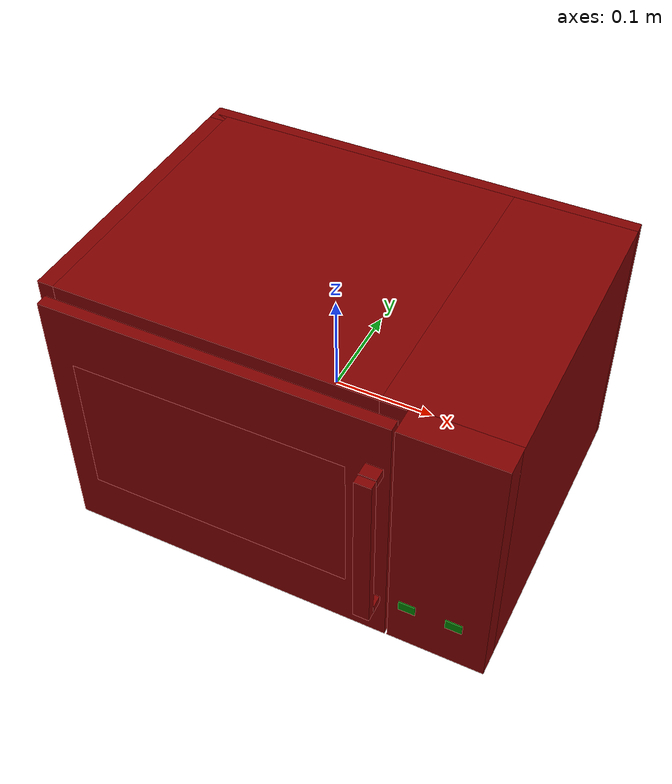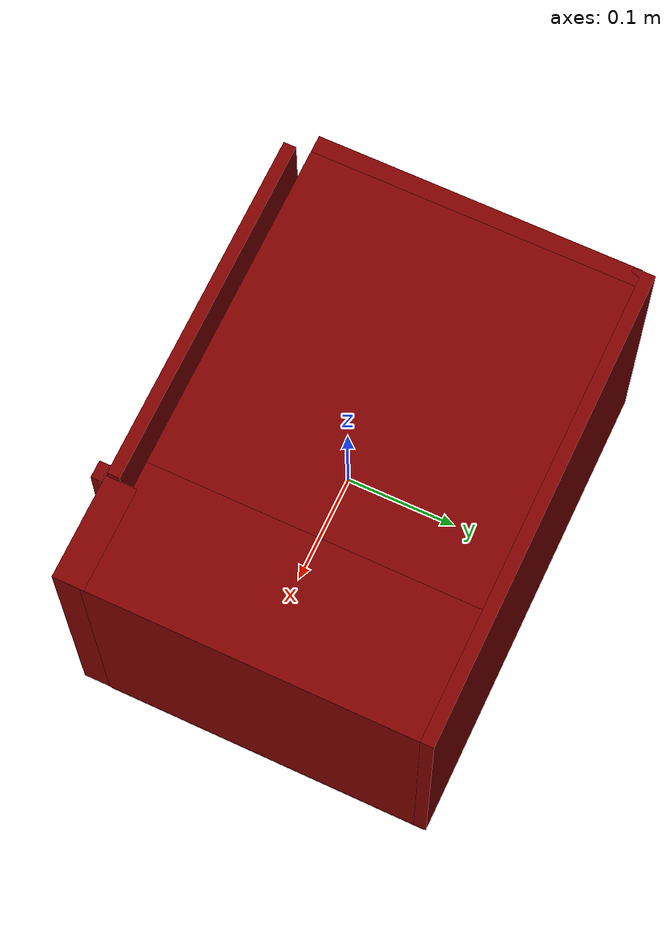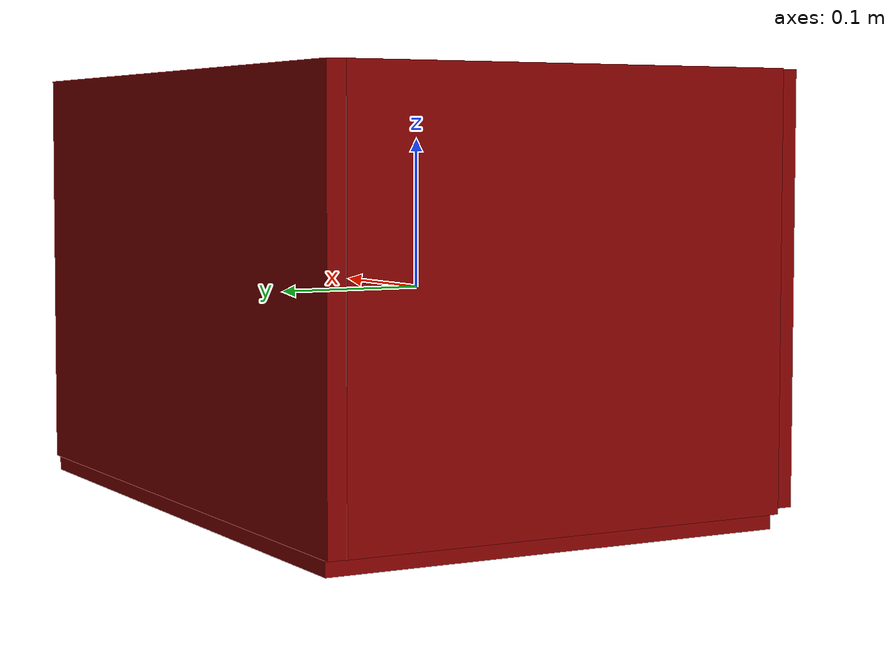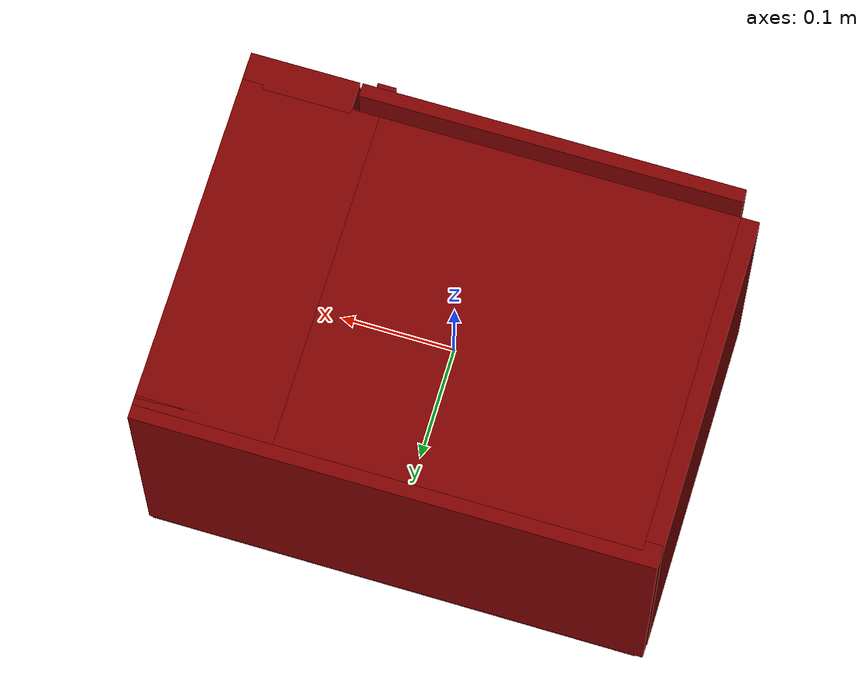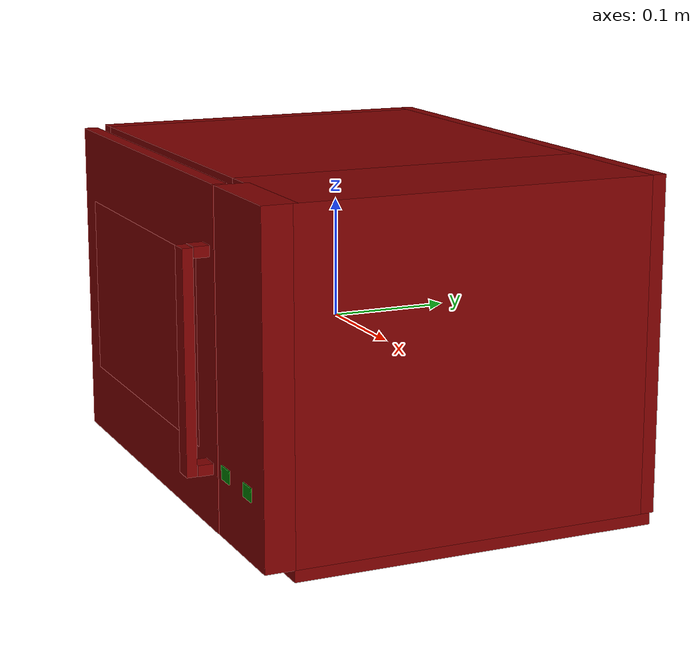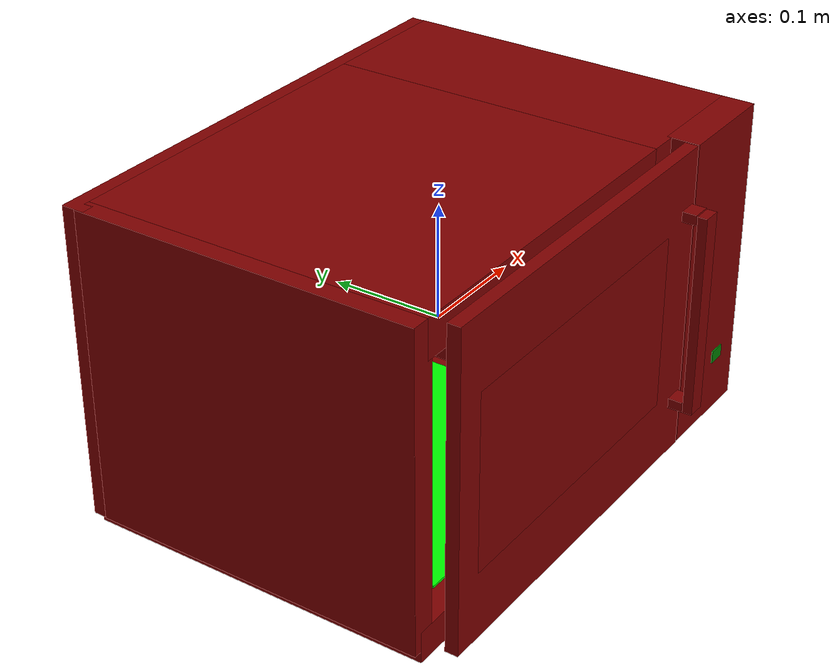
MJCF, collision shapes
<mujoco model="model">
  <compiler angle="radian"/>
  <asset>
    <mesh file="visuals/door.obj" name="door_vis"/>
    <mesh file="visuals/door_Clear.obj" name="door_Clear_vis"/>
    <mesh file="visuals/Body001.obj" name="Body001_vis"/>
    <mesh file="visuals/Disc001.obj" name="Disc001_vis"/>
    <texture file="visuals/T_BC001.png" name="Body001_material" type="2d"/>
    <material name="Body001_material" rgba="1 1 1 1.0" texture="Body001_material" shininess="0.141421377658844" specular="0.3103448502657381"/>
    <texture file="visuals/T_BC001.png" name="door_material" type="2d"/>
    <material name="door_material" rgba="1 1 1 1.0" texture="door_material" shininess="0.141421377658844" specular="0.3103448502657381"/>
    <material name="door_Clear_material" rgba="0.01037973165512085 0.01037973165512085 0.01037973165512085 0.8029197454452515" shininess="0.5" specular="0.3103448502657381"/>
    <texture file="visuals/T_BC001.png" name="Disc001_material" type="2d"/>
    <material name="Disc001_material" rgba="1 1 1 1.0" texture="Disc001_material" shininess="0.141421377658844" specular="0.3103448502657381"/>
  </asset>
  <default>
    <default class="visual">
      <geom conaffinity="0" contype="0" group="1" type="mesh"/>
    </default>
    <default class="collision">
      <geom group="0" rgba="0.5 0 0 0.5"/>
    </default>
    <default class="spawn">
      <geom group="0" rgba="1 1 1 0.5" contype="0" conaffinity="0"/>
      <site group="0" rgba="1 1 1 0.5"/>
    </default>
    <default class="region">
      <geom group="1" conaffinity="0" contype="0" rgba="0 1 0 0"/>
    </default>
  </default>
  <worldbody>
    <body>
      <body name="object">
        <geom class="collision" type="box" pos="0.147394 -0.157124 -0.077847" size="0.008099894970655441 0.0005252816481515765 0.005531715229153633" quat="1.0 0.0 0.0 0.0" name="stop_button" rgba="0.0 0.5 0 0.5"/>
        <geom class="collision" type="box" pos="0.192207 -0.156951 -0.077603" size="0.008099899627268314 0.0005252816481515765 0.005531718954443932" quat="1.0 0.0 0.0 0.0" name="start_button" rgba="0.0 0.5 0 0.5"/>
        <geom class="collision" type="box" pos="-0.048401 0.013296 -0.105446" size="0.12936662137508392 0.12936662137508392 0.0009999999310821295" quat="1.0 0.0 0.0 0.0" name="tray" rgba="0 1 0 0.5"/>
        <geom mesh="Body001_vis" type="mesh" solimp="0.998 0.998 0.001" solref="0.001 1" density="100" friction="0.95 0.3 0.1" class="visual" material="Body001_material"/>
        <geom class="collision" type="box" pos="0.000305 0.169050 0.005382" size="0.22377416491508484 0.010054375045001507 0.13725271821022034" quat="1.0 0.0 0.0 0.0"/>
        <geom class="collision" type="box" pos="-0.213381 0.017738 0.005382" size="0.010643821209669113 0.1493767946958542 0.13725274801254272" quat="1.0 0.0 0.0 0.0"/>
        <geom class="collision" type="box" pos="0.163506 0.017738 0.005382" size="0.06070324406027794 0.14937694370746613 0.1372528076171875" quat="1.0 0.0 0.0 0.0"/>
        <geom class="collision" type="box" pos="-0.051852 0.017738 0.126195" size="0.15610602498054504 0.14937709271907806 0.01644010655581951" quat="1.0 0.0 0.0 0.0"/>
        <geom class="collision" type="box" pos="0.002917 0.022660 -0.128437" size="0.2194339632987976 0.1542992889881134 0.013870533555746078" quat="1.0 0.0 0.0 0.0"/>
        <geom class="collision" type="box" pos="0.176506 -0.141974 0.005382" size="0.04770273715257645 0.014300061389803886 0.13725291192531586" quat="1.0 0.0 0.0 0.0"/>
        <body name="door">
          <joint axis="0.0 0.0 1.0" pos="-0.210282 -0.143213 0.004336" limited="true" name="microjoint" range="-1.5707963267948966 0.0" type="hinge" damping="1" frictionloss="1" armature=".01" stiffness="0.05"/>
          <geom mesh="door_vis" type="mesh" solimp="0.998 0.998 0.001" solref="0.001 1" density="100" friction="0.95 0.3 0.1" class="visual" material="door_material"/>
          <geom class="collision" type="box" pos="-0.039771 -0.150585 0.005382" size="0.16624118387699127 0.005748497322201729 0.13756945729255676" quat="1.0 0.0 0.0 0.0"/>
          <geom class="collision" type="box" pos="0.112834 -0.174839 0.004788" size="0.00809988472610712 0.004304774571210146 0.09009139984846115" quat="1.0 0.0 0.0 0.0" name="door_handle"/>
          <geom class="collision" type="box" pos="0.112834 -0.163561 0.091136" size="0.008099889382719994 0.006349428091198206 0.004451367538422346" quat="1.0 0.0 0.0 0.0"/>
          <geom class="collision" type="box" pos="0.112834 -0.163561 -0.081027" size="0.008099894039332867 0.006349433213472366 0.004451372195035219" quat="1.0 0.0 0.0 0.0"/>
          <body name="door_Clear">
            <geom mesh="door_Clear_vis" type="mesh" solimp="0.998 0.998 0.001" solref="0.001 1" density="100" friction="0.95 0.3 0.1" class="visual" material="door_Clear_material"/>
            <geom class="collision" type="box" pos="-0.047355 -0.143374 0.003600" size="0.13360628485679626 0.012960139662027359 0.07673070579767227" quat="1.0 0.0 0.0 0.0"/>
          </body>
        </body>
        <body name="Disc001">
          <joint axis="0.0 0.0 1.0" pos="-0.047737 0.013957 -0.110762" limited="false" name="Disc001_joint" range="0 360" type="hinge" damping="1" frictionloss="1" armature=".01" stiffness="0.05"/>
          <geom mesh="Disc001_vis" type="mesh" solimp="0.998 0.998 0.001" solref="0.001 1" density="100" friction="0.95 0.3 0.1" class="visual" material="Disc001_material"/>
          <geom class="collision" type="cylinder" pos="-0.048401 0.013296 -0.110486" size="0.12936662137508392 0.0028322404250502586" quat="1.0 0.0 0.0 0.0"/>
        </body>
        <geom class="region" name="reg_main" type="box" pos="0.0 0.011411000000000004 0.0" size="0.223775 0.167627 0.142318"/>
        <geom class="region" name="reg_int" type="box" pos="-0.04757 0.01753450000000001 0.007684000000000003" size="0.156307 0.1381465 0.113061"/>
      </body>
    </body>
  </worldbody>
  <actuator>
    <motor name="microjoint_actuator" joint="microjoint" gear="5"/>
    <motor name="Disc001_joint_actuator" joint="Disc001_joint" gear="10"/>
  </actuator>
</mujoco>
